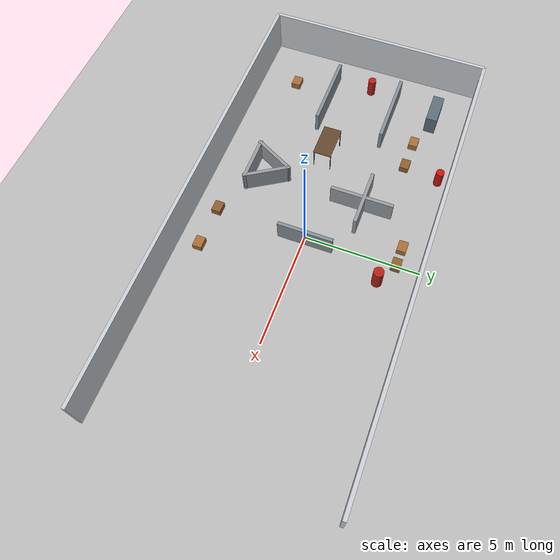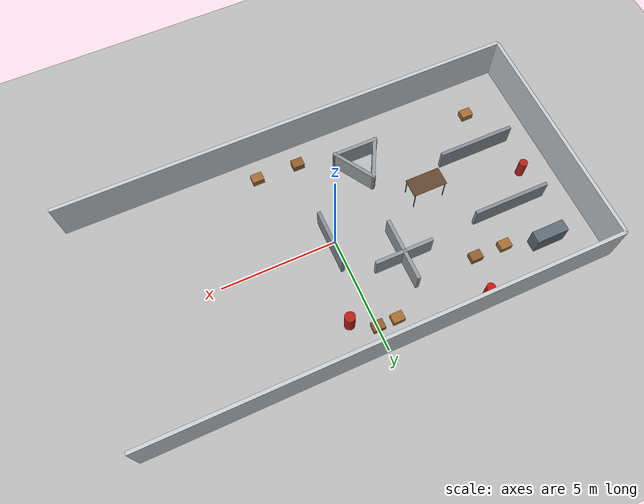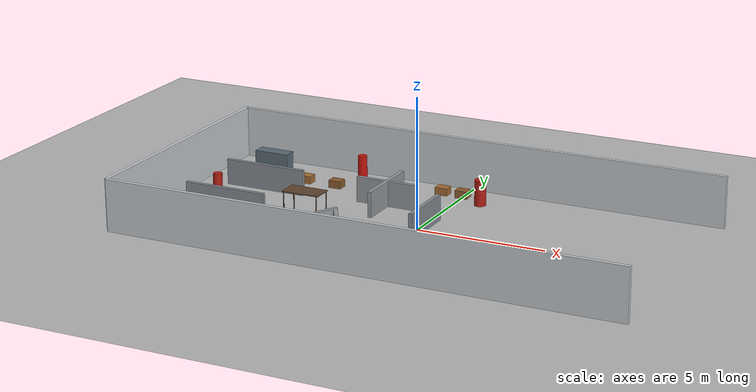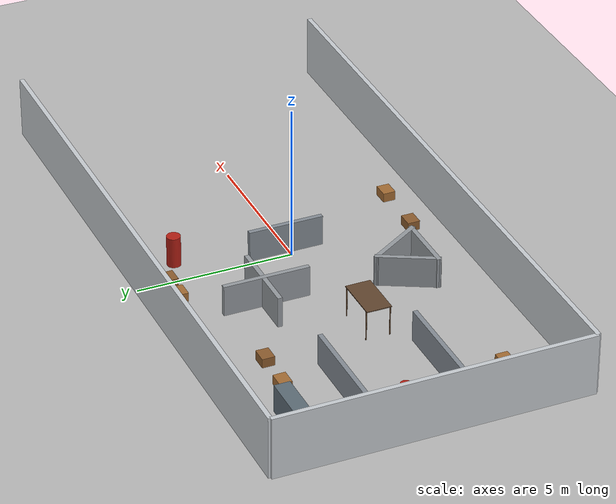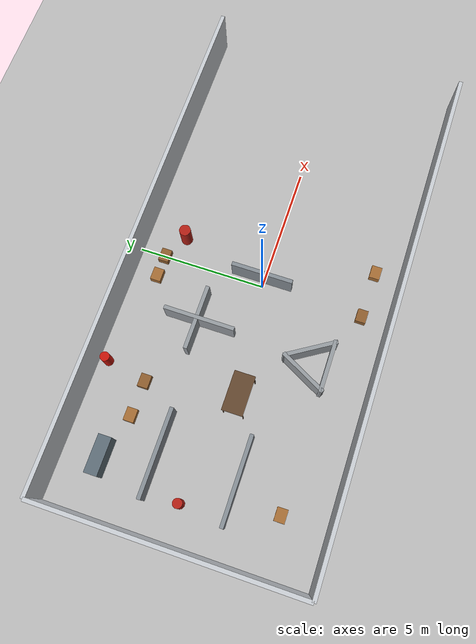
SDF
<sdf version="1.6">
 <world name="default">
  <model name="ground_plane">
   <static>true</static>
   <link name="link">
    <collision name="collision">
     <geometry><plane><normal>0 0 1</normal><size>100 100</size></plane></geometry>
     <surface><friction><ode><mu>100</mu><mu2>50</mu2></ode></friction></surface>
    </collision>
    <visual name="visual">
     <cast_shadows>false</cast_shadows>
     <geometry><plane><normal>0 0 1</normal><size>100 100</size></plane></geometry>
     <material><ambient>0.72 0.72 0.72 1</ambient><diffuse>0.72 0.72 0.72 1</diffuse></material>
    </visual>
   </link>
  </model>
  <model name="boundary_wall_north">
   <static>true</static>
   <pose>0 5 1 0 0 0</pose>
   <link name="link">
    <collision name="collision">
     <geometry><box><size>20 0.15 2</size></box></geometry>
     <surface>
      <friction>
       <ode><mu>1</mu><mu2>1</mu2><fdir1>0 0 0</fdir1><slip1>0</slip1><slip2>0</slip2></ode>
       <torsional>
        <coefficient>1</coefficient>
        <patch_radius>0</patch_radius>
        <surface_radius>0</surface_radius>
        <use_patch_radius>1</use_patch_radius>
        <ode><slip>0</slip></ode>
       </torsional>
      </friction>
      <bounce><restitution_coefficient>0</restitution_coefficient><threshold>1e+06</threshold></bounce>
      <contact>
       <collide_without_contact>0</collide_without_contact>
       <collide_without_contact_bitmask>1</collide_without_contact_bitmask>
       <collide_bitmask>1</collide_bitmask>
       <ode>
        <soft_cfm>0</soft_cfm>
        <soft_erp>0.2</soft_erp>
        <kp>1e+13</kp>
        <kd>1</kd>
        <max_vel>0.01</max_vel>
        <min_depth>0</min_depth>
       </ode>
       <bullet>
        <split_impulse>1</split_impulse>
        <split_impulse_penetration_threshold>-0.01</split_impulse_penetration_threshold>
        <soft_cfm>0</soft_cfm>
        <soft_erp>0.2</soft_erp>
        <kp>1e+13</kp>
        <kd>1</kd>
       </bullet>
      </contact>
     </surface>
    </collision>
    <visual name="visual">
     <geometry><box><size>20 0.15 2</size></box></geometry>
     <material><ambient>0.78 0.8 0.82 1</ambient><diffuse>0.78 0.8 0.82 1</diffuse></material>
    </visual>
   </link>
  </model>
  <model name="boundary_wall_south">
   <static>true</static>
   <pose>0 -5 1 0 0 3.1415927</pose>
   <link name="link">
    <collision name="collision">
     <geometry><box><size>20 0.15 2</size></box></geometry>
     <surface>
      <friction>
       <ode><mu>1</mu><mu2>1</mu2><fdir1>0 0 0</fdir1><slip1>0</slip1><slip2>0</slip2></ode>
       <torsional>
        <coefficient>1</coefficient>
        <patch_radius>0</patch_radius>
        <surface_radius>0</surface_radius>
        <use_patch_radius>1</use_patch_radius>
        <ode><slip>0</slip></ode>
       </torsional>
      </friction>
      <bounce><restitution_coefficient>0</restitution_coefficient><threshold>1e+06</threshold></bounce>
      <contact>
       <collide_without_contact>0</collide_without_contact>
       <collide_without_contact_bitmask>1</collide_without_contact_bitmask>
       <collide_bitmask>1</collide_bitmask>
       <ode>
        <soft_cfm>0</soft_cfm>
        <soft_erp>0.2</soft_erp>
        <kp>1e+13</kp>
        <kd>1</kd>
        <max_vel>0.01</max_vel>
        <min_depth>0</min_depth>
       </ode>
       <bullet>
        <split_impulse>1</split_impulse>
        <split_impulse_penetration_threshold>-0.01</split_impulse_penetration_threshold>
        <soft_cfm>0</soft_cfm>
        <soft_erp>0.2</soft_erp>
        <kp>1e+13</kp>
        <kd>1</kd>
       </bullet>
      </contact>
     </surface>
    </collision>
    <visual name="visual">
     <geometry><box><size>20 0.15 2</size></box></geometry>
     <material><ambient>0.78 0.8 0.82 1</ambient><diffuse>0.78 0.8 0.82 1</diffuse></material>
    </visual>
   </link>
  </model>
  <model name="boundary_wall_west">
   <static>true</static>
   <pose>-10 0 1 0 0 1.5707963</pose>
   <link name="link">
    <collision name="collision">
     <geometry><box><size>10 0.15 2</size></box></geometry>
     <surface>
      <friction>
       <ode><mu>1</mu><mu2>1</mu2><fdir1>0 0 0</fdir1><slip1>0</slip1><slip2>0</slip2></ode>
       <torsional>
        <coefficient>1</coefficient>
        <patch_radius>0</patch_radius>
        <surface_radius>0</surface_radius>
        <use_patch_radius>1</use_patch_radius>
        <ode><slip>0</slip></ode>
       </torsional>
      </friction>
      <bounce><restitution_coefficient>0</restitution_coefficient><threshold>1e+06</threshold></bounce>
      <contact>
       <collide_without_contact>0</collide_without_contact>
       <collide_without_contact_bitmask>1</collide_without_contact_bitmask>
       <collide_bitmask>1</collide_bitmask>
       <ode>
        <soft_cfm>0</soft_cfm>
        <soft_erp>0.2</soft_erp>
        <kp>1e+13</kp>
        <kd>1</kd>
        <max_vel>0.01</max_vel>
        <min_depth>0</min_depth>
       </ode>
       <bullet>
        <split_impulse>1</split_impulse>
        <split_impulse_penetration_threshold>-0.01</split_impulse_penetration_threshold>
        <soft_cfm>0</soft_cfm>
        <soft_erp>0.2</soft_erp>
        <kp>1e+13</kp>
        <kd>1</kd>
       </bullet>
      </contact>
     </surface>
    </collision>
    <visual name="visual">
     <geometry><box><size>10 0.15 2</size></box></geometry>
     <material><ambient>0.78 0.8 0.82 1</ambient><diffuse>0.78 0.8 0.82 1</diffuse></material>
    </visual>
   </link>
  </model>
  <model name="box_Wall_11_Wall_11_Collision">
   <static>true</static>
   <pose>-2.15144 1.85688 0.5 0 0 0</pose>
   <link name="link">
    <collision name="collision">
     <geometry><box><size>2.5 0.15 1</size></box></geometry>
     <surface>
      <friction>
       <ode><mu>1</mu><mu2>1</mu2><fdir1>0 0 0</fdir1><slip1>0</slip1><slip2>0</slip2></ode>
       <torsional>
        <coefficient>1</coefficient>
        <patch_radius>0</patch_radius>
        <surface_radius>0</surface_radius>
        <use_patch_radius>1</use_patch_radius>
        <ode><slip>0</slip></ode>
       </torsional>
      </friction>
      <bounce><restitution_coefficient>0</restitution_coefficient><threshold>1e+06</threshold></bounce>
      <contact>
       <collide_without_contact>0</collide_without_contact>
       <collide_without_contact_bitmask>1</collide_without_contact_bitmask>
       <collide_bitmask>1</collide_bitmask>
       <ode>
        <soft_cfm>0</soft_cfm>
        <soft_erp>0.2</soft_erp>
        <kp>1e+13</kp>
        <kd>1</kd>
        <max_vel>0.01</max_vel>
        <min_depth>0</min_depth>
       </ode>
       <bullet>
        <split_impulse>1</split_impulse>
        <split_impulse_penetration_threshold>-0.01</split_impulse_penetration_threshold>
        <soft_cfm>0</soft_cfm>
        <soft_erp>0.2</soft_erp>
        <kp>1e+13</kp>
        <kd>1</kd>
       </bullet>
      </contact>
     </surface>
    </collision>
    <visual name="visual">
     <geometry><box><size>2.5 0.15 1</size></box></geometry>
     <material><ambient>0.58 0.6 0.62 1</ambient><diffuse>0.58 0.6 0.62 1</diffuse></material>
    </visual>
   </link>
  </model>
  <model name="box_Wall_13_Wall_13_Collision">
   <static>true</static>
   <pose>-2.15444 1.76388 0.5 0 0 -1.5708</pose>
   <link name="link">
    <collision name="collision">
     <geometry><box><size>2.75 0.15 1</size></box></geometry>
     <surface>
      <friction>
       <ode><mu>1</mu><mu2>1</mu2><fdir1>0 0 0</fdir1><slip1>0</slip1><slip2>0</slip2></ode>
       <torsional>
        <coefficient>1</coefficient>
        <patch_radius>0</patch_radius>
        <surface_radius>0</surface_radius>
        <use_patch_radius>1</use_patch_radius>
        <ode><slip>0</slip></ode>
       </torsional>
      </friction>
      <bounce><restitution_coefficient>0</restitution_coefficient><threshold>1e+06</threshold></bounce>
      <contact>
       <collide_without_contact>0</collide_without_contact>
       <collide_without_contact_bitmask>1</collide_without_contact_bitmask>
       <collide_bitmask>1</collide_bitmask>
       <ode>
        <soft_cfm>0</soft_cfm>
        <soft_erp>0.2</soft_erp>
        <kp>1e+13</kp>
        <kd>1</kd>
        <max_vel>0.01</max_vel>
        <min_depth>0</min_depth>
       </ode>
       <bullet>
        <split_impulse>1</split_impulse>
        <split_impulse_penetration_threshold>-0.01</split_impulse_penetration_threshold>
        <soft_cfm>0</soft_cfm>
        <soft_erp>0.2</soft_erp>
        <kp>1e+13</kp>
        <kd>1</kd>
       </bullet>
      </contact>
     </surface>
    </collision>
    <visual name="visual">
     <geometry><box><size>2.75 0.15 1</size></box></geometry>
     <material><ambient>0.58 0.6 0.62 1</ambient><diffuse>0.58 0.6 0.62 1</diffuse></material>
    </visual>
   </link>
  </model>
  <model name="box_Wall_24_Wall_24_Collision">
   <static>true</static>
   <pose>-2.8952 -2.491 0.5 0 0 1.09459</pose>
   <link name="link">
    <collision name="collision">
     <geometry><box><size>1.97704 0.15 1</size></box></geometry>
     <surface>
      <friction>
       <ode><mu>1</mu><mu2>1</mu2><fdir1>0 0 0</fdir1><slip1>0</slip1><slip2>0</slip2></ode>
       <torsional>
        <coefficient>1</coefficient>
        <patch_radius>0</patch_radius>
        <surface_radius>0</surface_radius>
        <use_patch_radius>1</use_patch_radius>
        <ode><slip>0</slip></ode>
       </torsional>
      </friction>
      <bounce><restitution_coefficient>0</restitution_coefficient><threshold>1e+06</threshold></bounce>
      <contact>
       <collide_without_contact>0</collide_without_contact>
       <collide_without_contact_bitmask>1</collide_without_contact_bitmask>
       <collide_bitmask>1</collide_bitmask>
       <ode>
        <soft_cfm>0</soft_cfm>
        <soft_erp>0.2</soft_erp>
        <kp>1e+13</kp>
        <kd>1</kd>
        <max_vel>0.01</max_vel>
        <min_depth>0</min_depth>
       </ode>
       <bullet>
        <split_impulse>1</split_impulse>
        <split_impulse_penetration_threshold>-0.01</split_impulse_penetration_threshold>
        <soft_cfm>0</soft_cfm>
        <soft_erp>0.2</soft_erp>
        <kp>1e+13</kp>
        <kd>1</kd>
       </bullet>
      </contact>
     </surface>
    </collision>
    <visual name="visual">
     <geometry><box><size>1.97704 0.15 1</size></box></geometry>
     <material><ambient>0.58 0.6 0.62 1</ambient><diffuse>0.58 0.6 0.62 1</diffuse></material>
    </visual>
   </link>
  </model>
  <model name="box_Wall_25_Wall_25_Collision">
   <static>true</static>
   <pose>-1.97021 -2.491 0.5 0 0 -1.01325</pose>
   <link name="link">
    <collision name="collision">
     <geometry><box><size>2.06356 0.15 1</size></box></geometry>
     <surface>
      <friction>
       <ode><mu>1</mu><mu2>1</mu2><fdir1>0 0 0</fdir1><slip1>0</slip1><slip2>0</slip2></ode>
       <torsional>
        <coefficient>1</coefficient>
        <patch_radius>0</patch_radius>
        <surface_radius>0</surface_radius>
        <use_patch_radius>1</use_patch_radius>
        <ode><slip>0</slip></ode>
       </torsional>
      </friction>
      <bounce><restitution_coefficient>0</restitution_coefficient><threshold>1e+06</threshold></bounce>
      <contact>
       <collide_without_contact>0</collide_without_contact>
       <collide_without_contact_bitmask>1</collide_without_contact_bitmask>
       <collide_bitmask>1</collide_bitmask>
       <ode>
        <soft_cfm>0</soft_cfm>
        <soft_erp>0.2</soft_erp>
        <kp>1e+13</kp>
        <kd>1</kd>
        <max_vel>0.01</max_vel>
        <min_depth>0</min_depth>
       </ode>
       <bullet>
        <split_impulse>1</split_impulse>
        <split_impulse_penetration_threshold>-0.01</split_impulse_penetration_threshold>
        <soft_cfm>0</soft_cfm>
        <soft_erp>0.2</soft_erp>
        <kp>1e+13</kp>
        <kd>1</kd>
       </bullet>
      </contact>
     </surface>
    </collision>
    <visual name="visual">
     <geometry><box><size>2.06356 0.15 1</size></box></geometry>
     <material><ambient>0.58 0.6 0.62 1</ambient><diffuse>0.58 0.6 0.62 1</diffuse></material>
    </visual>
   </link>
  </model>
  <model name="box_Wall_26_Wall_26_Collision">
   <static>true</static>
   <pose>-2.38897 -3.28539 0.5 0 0 3.14159</pose>
   <link name="link">
    <collision name="collision">
     <geometry><box><size>2 0.15 1</size></box></geometry>
     <surface>
      <friction>
       <ode><mu>1</mu><mu2>1</mu2><fdir1>0 0 0</fdir1><slip1>0</slip1><slip2>0</slip2></ode>
       <torsional>
        <coefficient>1</coefficient>
        <patch_radius>0</patch_radius>
        <surface_radius>0</surface_radius>
        <use_patch_radius>1</use_patch_radius>
        <ode><slip>0</slip></ode>
       </torsional>
      </friction>
      <bounce><restitution_coefficient>0</restitution_coefficient><threshold>1e+06</threshold></bounce>
      <contact>
       <collide_without_contact>0</collide_without_contact>
       <collide_without_contact_bitmask>1</collide_without_contact_bitmask>
       <collide_bitmask>1</collide_bitmask>
       <ode>
        <soft_cfm>0</soft_cfm>
        <soft_erp>0.2</soft_erp>
        <kp>1e+13</kp>
        <kd>1</kd>
        <max_vel>0.01</max_vel>
        <min_depth>0</min_depth>
       </ode>
       <bullet>
        <split_impulse>1</split_impulse>
        <split_impulse_penetration_threshold>-0.01</split_impulse_penetration_threshold>
        <soft_cfm>0</soft_cfm>
        <soft_erp>0.2</soft_erp>
        <kp>1e+13</kp>
        <kd>1</kd>
       </bullet>
      </contact>
     </surface>
    </collision>
    <visual name="visual">
     <geometry><box><size>2 0.15 1</size></box></geometry>
     <material><ambient>0.58 0.6 0.62 1</ambient><diffuse>0.58 0.6 0.62 1</diffuse></material>
    </visual>
   </link>
  </model>
  <model name="cardboard_box_1">
   <static>true</static>
   <pose>0.006438 -3.96264 0.15 0 0 0</pose>
   <link name="link">
    <collision name="collision">
     <geometry><box><size>0.5 0.4 0.3</size></box></geometry>
     <surface>
      <friction><ode><mu>1</mu><mu2>1</mu2></ode></friction>
      <contact><ode><kp>1e+07</kp><kd>1</kd><min_depth>0.001</min_depth><max_vel>0.1</max_vel></ode></contact>
     </surface>
    </collision>
    <visual name="visual">
     <geometry><box><size>0.5 0.4 0.3</size></box></geometry>
     <material><ambient>0.55 0.36 0.18 1</ambient><diffuse>0.55 0.36 0.18 1</diffuse></material>
    </visual>
   </link>
  </model>
  <model name="cardboard_box_2">
   <static>true</static>
   <pose>-4.88373 2.96722 0.15 0 0 0</pose>
   <link name="link">
    <collision name="collision">
     <geometry><box><size>0.5 0.4 0.3</size></box></geometry>
     <surface>
      <friction><ode><mu>1</mu><mu2>1</mu2></ode></friction>
      <contact><ode><kp>1e+07</kp><kd>1</kd><min_depth>0.001</min_depth><max_vel>0.1</max_vel></ode></contact>
     </surface>
    </collision>
    <visual name="visual">
     <geometry><box><size>0.5 0.4 0.3</size></box></geometry>
     <material><ambient>0.55 0.36 0.18 1</ambient><diffuse>0.55 0.36 0.18 1</diffuse></material>
    </visual>
   </link>
  </model>
  <model name="cardboard_box_3">
   <static>true</static>
   <pose>-0.0158 3.98725 0.15 0 0 0</pose>
   <link name="link">
    <collision name="collision">
     <geometry><box><size>0.5 0.4 0.3</size></box></geometry>
     <surface>
      <friction><ode><mu>1</mu><mu2>1</mu2></ode></friction>
      <contact><ode><kp>1e+07</kp><kd>1</kd><min_depth>0.001</min_depth><max_vel>0.1</max_vel></ode></contact>
     </surface>
    </collision>
    <visual name="visual">
     <geometry><box><size>0.5 0.4 0.3</size></box></geometry>
     <material><ambient>0.55 0.36 0.18 1</ambient><diffuse>0.55 0.36 0.18 1</diffuse></material>
    </visual>
   </link>
  </model>
  <model name="table_link_surface">
   <static>true</static>
   <pose>-4.34248 -0.532954 1 0 0 0</pose>
   <link name="link">
    <collision name="collision">
     <geometry><box><size>1.5 0.8 0.03</size></box></geometry>
     <surface><friction><ode><mu>0.6</mu><mu2>0.6</mu2></ode></friction></surface>
    </collision>
    <visual name="visual">
     <geometry><box><size>1.5 0.8 0.03</size></box></geometry>
     <material><ambient>0.38 0.27 0.18 1</ambient><diffuse>0.38 0.27 0.18 1</diffuse></material>
    </visual>
   </link>
  </model>
  <model name="test_wall_left_corridor_upper">
   <static>true</static>
   <pose>-7.2 1.55 0.5 0 0 0</pose>
   <link name="link">
    <collision name="collision">
     <geometry><box><size>3.3 0.15 1</size></box></geometry>
     <surface>
      <friction>
       <ode><mu>1</mu><mu2>1</mu2><fdir1>0 0 0</fdir1><slip1>0</slip1><slip2>0</slip2></ode>
       <torsional>
        <coefficient>1</coefficient>
        <patch_radius>0</patch_radius>
        <surface_radius>0</surface_radius>
        <use_patch_radius>1</use_patch_radius>
        <ode><slip>0</slip></ode>
       </torsional>
      </friction>
      <bounce><restitution_coefficient>0</restitution_coefficient><threshold>1e+06</threshold></bounce>
      <contact>
       <collide_without_contact>0</collide_without_contact>
       <collide_without_contact_bitmask>1</collide_without_contact_bitmask>
       <collide_bitmask>1</collide_bitmask>
       <ode>
        <soft_cfm>0</soft_cfm>
        <soft_erp>0.2</soft_erp>
        <kp>1e+13</kp>
        <kd>1</kd>
        <max_vel>0.01</max_vel>
        <min_depth>0</min_depth>
       </ode>
       <bullet>
        <split_impulse>1</split_impulse>
        <split_impulse_penetration_threshold>-0.01</split_impulse_penetration_threshold>
        <soft_cfm>0</soft_cfm>
        <soft_erp>0.2</soft_erp>
        <kp>1e+13</kp>
        <kd>1</kd>
       </bullet>
      </contact>
     </surface>
    </collision>
    <visual name="visual">
     <geometry><box><size>3.3 0.15 1</size></box></geometry>
     <material><ambient>0.52 0.55 0.58 1</ambient><diffuse>0.52 0.55 0.58 1</diffuse></material>
    </visual>
   </link>
  </model>
  <model name="test_wall_left_corridor_lower">
   <static>true</static>
   <pose>-7.2 -1.45 0.5 0 0 0</pose>
   <link name="link">
    <collision name="collision">
     <geometry><box><size>3.3 0.15 1</size></box></geometry>
     <surface>
      <friction>
       <ode><mu>1</mu><mu2>1</mu2><fdir1>0 0 0</fdir1><slip1>0</slip1><slip2>0</slip2></ode>
       <torsional>
        <coefficient>1</coefficient>
        <patch_radius>0</patch_radius>
        <surface_radius>0</surface_radius>
        <use_patch_radius>1</use_patch_radius>
        <ode><slip>0</slip></ode>
       </torsional>
      </friction>
      <bounce><restitution_coefficient>0</restitution_coefficient><threshold>1e+06</threshold></bounce>
      <contact>
       <collide_without_contact>0</collide_without_contact>
       <collide_without_contact_bitmask>1</collide_without_contact_bitmask>
       <collide_bitmask>1</collide_bitmask>
       <ode>
        <soft_cfm>0</soft_cfm>
        <soft_erp>0.2</soft_erp>
        <kp>1e+13</kp>
        <kd>1</kd>
        <max_vel>0.01</max_vel>
        <min_depth>0</min_depth>
       </ode>
       <bullet>
        <split_impulse>1</split_impulse>
        <split_impulse_penetration_threshold>-0.01</split_impulse_penetration_threshold>
        <soft_cfm>0</soft_cfm>
        <soft_erp>0.2</soft_erp>
        <kp>1e+13</kp>
        <kd>1</kd>
       </bullet>
      </contact>
     </surface>
    </collision>
    <visual name="visual">
     <geometry><box><size>3.3 0.15 1</size></box></geometry>
     <material><ambient>0.52 0.55 0.58 1</ambient><diffuse>0.52 0.55 0.58 1</diffuse></material>
    </visual>
   </link>
  </model>
  <model name="test_wall_middle_vertical">
   <static>true</static>
   <pose>0.25 0.1 0.5 0 0 1.5707963</pose>
   <link name="link">
    <collision name="collision">
     <geometry><box><size>2.4 0.15 1</size></box></geometry>
     <surface>
      <friction>
       <ode><mu>1</mu><mu2>1</mu2><fdir1>0 0 0</fdir1><slip1>0</slip1><slip2>0</slip2></ode>
       <torsional>
        <coefficient>1</coefficient>
        <patch_radius>0</patch_radius>
        <surface_radius>0</surface_radius>
        <use_patch_radius>1</use_patch_radius>
        <ode><slip>0</slip></ode>
       </torsional>
      </friction>
      <bounce><restitution_coefficient>0</restitution_coefficient><threshold>1e+06</threshold></bounce>
      <contact>
       <collide_without_contact>0</collide_without_contact>
       <collide_without_contact_bitmask>1</collide_without_contact_bitmask>
       <collide_bitmask>1</collide_bitmask>
       <ode>
        <soft_cfm>0</soft_cfm>
        <soft_erp>0.2</soft_erp>
        <kp>1e+13</kp>
        <kd>1</kd>
        <max_vel>0.01</max_vel>
        <min_depth>0</min_depth>
       </ode>
       <bullet>
        <split_impulse>1</split_impulse>
        <split_impulse_penetration_threshold>-0.01</split_impulse_penetration_threshold>
        <soft_cfm>0</soft_cfm>
        <soft_erp>0.2</soft_erp>
        <kp>1e+13</kp>
        <kd>1</kd>
       </bullet>
      </contact>
     </surface>
    </collision>
    <visual name="visual">
     <geometry><box><size>2.4 0.15 1</size></box></geometry>
     <material><ambient>0.52 0.55 0.58 1</ambient><diffuse>0.52 0.55 0.58 1</diffuse></material>
    </visual>
   </link>
  </model>
  <model name="test_low_cabinet_left">
   <static>true</static>
   <pose>-7.9 3.45 0.45 0 0 0</pose>
   <link name="link">
    <collision name="collision">
     <geometry><box><size>1.4 0.5 0.9</size></box></geometry>
     <surface>
      <friction>
       <ode><mu>1</mu><mu2>1</mu2><fdir1>0 0 0</fdir1><slip1>0</slip1><slip2>0</slip2></ode>
       <torsional>
        <coefficient>1</coefficient>
        <patch_radius>0</patch_radius>
        <surface_radius>0</surface_radius>
        <use_patch_radius>1</use_patch_radius>
        <ode><slip>0</slip></ode>
       </torsional>
      </friction>
      <bounce><restitution_coefficient>0</restitution_coefficient><threshold>1e+06</threshold></bounce>
      <contact>
       <collide_without_contact>0</collide_without_contact>
       <collide_without_contact_bitmask>1</collide_without_contact_bitmask>
       <collide_bitmask>1</collide_bitmask>
       <ode>
        <soft_cfm>0</soft_cfm>
        <soft_erp>0.2</soft_erp>
        <kp>1e+13</kp>
        <kd>1</kd>
        <max_vel>0.01</max_vel>
        <min_depth>0</min_depth>
       </ode>
       <bullet>
        <split_impulse>1</split_impulse>
        <split_impulse_penetration_threshold>-0.01</split_impulse_penetration_threshold>
        <soft_cfm>0</soft_cfm>
        <soft_erp>0.2</soft_erp>
        <kp>1e+13</kp>
        <kd>1</kd>
       </bullet>
      </contact>
     </surface>
    </collision>
    <visual name="visual">
     <geometry><box><size>1.4 0.5 0.9</size></box></geometry>
     <material><ambient>0.36 0.42 0.46 1</ambient><diffuse>0.36 0.42 0.46 1</diffuse></material>
    </visual>
   </link>
  </model>
  <model name="test_cardboard_box_4">
   <static>true</static>
   <pose>-7.8 -3.25 0.15 0 0 0</pose>
   <link name="link">
    <collision name="collision">
     <geometry><box><size>0.5 0.4 0.3</size></box></geometry>
     <surface>
      <friction><ode><mu>1</mu><mu2>1</mu2></ode></friction>
      <contact><ode><kp>1e+07</kp><kd>1</kd><min_depth>0.001</min_depth><max_vel>0.1</max_vel></ode></contact>
     </surface>
    </collision>
    <visual name="visual">
     <geometry><box><size>0.5 0.4 0.3</size></box></geometry>
     <material><ambient>0.64 0.42 0.2 1</ambient><diffuse>0.64 0.42 0.2 1</diffuse></material>
    </visual>
   </link>
  </model>
  <model name="test_cardboard_box_5">
   <static>true</static>
   <pose>-6.2 3 0.15 0 0 0</pose>
   <link name="link">
    <collision name="collision">
     <geometry><box><size>0.5 0.4 0.3</size></box></geometry>
     <surface>
      <friction><ode><mu>1</mu><mu2>1</mu2></ode></friction>
      <contact><ode><kp>1e+07</kp><kd>1</kd><min_depth>0.001</min_depth><max_vel>0.1</max_vel></ode></contact>
     </surface>
    </collision>
    <visual name="visual">
     <geometry><box><size>0.5 0.4 0.3</size></box></geometry>
     <material><ambient>0.64 0.42 0.2 1</ambient><diffuse>0.64 0.42 0.2 1</diffuse></material>
    </visual>
   </link>
  </model>
  <model name="test_cardboard_box_8">
   <static>true</static>
   <pose>1.85 -4 0.15 0 0 0</pose>
   <link name="link">
    <collision name="collision">
     <geometry><box><size>0.5 0.4 0.3</size></box></geometry>
     <surface>
      <friction><ode><mu>1</mu><mu2>1</mu2></ode></friction>
      <contact><ode><kp>1e+07</kp><kd>1</kd><min_depth>0.001</min_depth><max_vel>0.1</max_vel></ode></contact>
     </surface>
    </collision>
    <visual name="visual">
     <geometry><box><size>0.5 0.4 0.3</size></box></geometry>
     <material><ambient>0.64 0.42 0.2 1</ambient><diffuse>0.64 0.42 0.2 1</diffuse></material>
    </visual>
   </link>
  </model>
  <model name="test_cardboard_box_9">
   <static>true</static>
   <pose>-0.85 4 0.15 0 0 0</pose>
   <link name="link">
    <collision name="collision">
     <geometry><box><size>0.5 0.4 0.3</size></box></geometry>
     <surface>
      <friction><ode><mu>1</mu><mu2>1</mu2></ode></friction>
      <contact><ode><kp>1e+07</kp><kd>1</kd><min_depth>0.001</min_depth><max_vel>0.1</max_vel></ode></contact>
     </surface>
    </collision>
    <visual name="visual">
     <geometry><box><size>0.5 0.4 0.3</size></box></geometry>
     <material><ambient>0.64 0.42 0.2 1</ambient><diffuse>0.64 0.42 0.2 1</diffuse></material>
    </visual>
   </link>
  </model>
  <model name="fire_hydrant_approx_collision">
   <static>true</static>
   <pose>-4.57173 4.55086 0.425 0 0 0</pose>
   <link name="link">
    <collision name="collision">
     <geometry><cylinder><radius>0.18</radius><length>0.85</length></cylinder></geometry>
     <surface>
      <friction>
       <ode><mu>1</mu><mu2>1</mu2><fdir1>0 0 0</fdir1><slip1>0</slip1><slip2>0</slip2></ode>
       <torsional>
        <coefficient>1</coefficient>
        <patch_radius>0</patch_radius>
        <surface_radius>0</surface_radius>
        <use_patch_radius>1</use_patch_radius>
        <ode><slip>0</slip></ode>
       </torsional>
      </friction>
      <bounce><restitution_coefficient>0</restitution_coefficient><threshold>1e+06</threshold></bounce>
      <contact>
       <collide_without_contact>0</collide_without_contact>
       <collide_without_contact_bitmask>1</collide_without_contact_bitmask>
       <collide_bitmask>1</collide_bitmask>
       <ode>
        <soft_cfm>0</soft_cfm>
        <soft_erp>0.2</soft_erp>
        <kp>1e+13</kp>
        <kd>1</kd>
        <max_vel>0.01</max_vel>
        <min_depth>0</min_depth>
       </ode>
       <bullet>
        <split_impulse>1</split_impulse>
        <split_impulse_penetration_threshold>-0.01</split_impulse_penetration_threshold>
        <soft_cfm>0</soft_cfm>
        <soft_erp>0.2</soft_erp>
        <kp>1e+13</kp>
        <kd>1</kd>
       </bullet>
      </contact>
     </surface>
    </collision>
    <visual name="visual">
     <geometry><cylinder><radius>0.18</radius><length>0.85</length></cylinder></geometry>
     <material><ambient>0.78 0.08 0.04 1</ambient><diffuse>0.78 0.08 0.04 1</diffuse></material>
    </visual>
   </link>
  </model>
  <model name="table_link_back_left_leg">
   <static>true</static>
   <pose>-5.02248 -0.152954 0.5 0 0 0</pose>
   <link name="link">
    <collision name="collision">
     <geometry><cylinder><radius>0.02</radius><length>1</length></cylinder></geometry>
     <surface><friction><ode><mu>0.6</mu><mu2>0.6</mu2></ode></friction></surface>
    </collision>
    <visual name="visual">
     <geometry><cylinder><radius>0.02</radius><length>1</length></cylinder></geometry>
     <material><ambient>0.38 0.27 0.18 1</ambient><diffuse>0.38 0.27 0.18 1</diffuse></material>
    </visual>
   </link>
  </model>
  <model name="table_link_back_right_leg">
   <static>true</static>
   <pose>-5.02248 -0.912954 0.5 0 0 0</pose>
   <link name="link">
    <collision name="collision">
     <geometry><cylinder><radius>0.02</radius><length>1</length></cylinder></geometry>
     <surface><friction><ode><mu>0.6</mu><mu2>0.6</mu2></ode></friction></surface>
    </collision>
    <visual name="visual">
     <geometry><cylinder><radius>0.02</radius><length>1</length></cylinder></geometry>
     <material><ambient>0.38 0.27 0.18 1</ambient><diffuse>0.38 0.27 0.18 1</diffuse></material>
    </visual>
   </link>
  </model>
  <model name="table_link_front_left_leg">
   <static>true</static>
   <pose>-3.66248 -0.152954 0.5 0 0 0</pose>
   <link name="link">
    <collision name="collision">
     <geometry><cylinder><radius>0.02</radius><length>1</length></cylinder></geometry>
     <surface><friction><ode><mu>0.6</mu><mu2>0.6</mu2></ode></friction></surface>
    </collision>
    <visual name="visual">
     <geometry><cylinder><radius>0.02</radius><length>1</length></cylinder></geometry>
     <material><ambient>0.38 0.27 0.18 1</ambient><diffuse>0.38 0.27 0.18 1</diffuse></material>
    </visual>
   </link>
  </model>
  <model name="table_link_front_right_leg">
   <static>true</static>
   <pose>-3.66248 -0.912954 0.5 0 0 0</pose>
   <link name="link">
    <collision name="collision">
     <geometry><cylinder><radius>0.02</radius><length>1</length></cylinder></geometry>
     <surface><friction><ode><mu>0.6</mu><mu2>0.6</mu2></ode></friction></surface>
    </collision>
    <visual name="visual">
     <geometry><cylinder><radius>0.02</radius><length>1</length></cylinder></geometry>
     <material><ambient>0.38 0.27 0.18 1</ambient><diffuse>0.38 0.27 0.18 1</diffuse></material>
    </visual>
   </link>
  </model>
  <model name="test_fire_hydrant_left">
   <static>true</static>
   <pose>-8.55 0.25 0.425 0 0 0</pose>
   <link name="link">
    <collision name="collision">
     <geometry><cylinder><radius>0.18</radius><length>0.85</length></cylinder></geometry>
     <surface>
      <friction>
       <ode><mu>1</mu><mu2>1</mu2><fdir1>0 0 0</fdir1><slip1>0</slip1><slip2>0</slip2></ode>
       <torsional>
        <coefficient>1</coefficient>
        <patch_radius>0</patch_radius>
        <surface_radius>0</surface_radius>
        <use_patch_radius>1</use_patch_radius>
        <ode><slip>0</slip></ode>
       </torsional>
      </friction>
      <bounce><restitution_coefficient>0</restitution_coefficient><threshold>1e+06</threshold></bounce>
      <contact>
       <collide_without_contact>0</collide_without_contact>
       <collide_without_contact_bitmask>1</collide_without_contact_bitmask>
       <collide_bitmask>1</collide_bitmask>
       <ode>
        <soft_cfm>0</soft_cfm>
        <soft_erp>0.2</soft_erp>
        <kp>1e+13</kp>
        <kd>1</kd>
        <max_vel>0.01</max_vel>
        <min_depth>0</min_depth>
       </ode>
       <bullet>
        <split_impulse>1</split_impulse>
        <split_impulse_penetration_threshold>-0.01</split_impulse_penetration_threshold>
        <soft_cfm>0</soft_cfm>
        <soft_erp>0.2</soft_erp>
        <kp>1e+13</kp>
        <kd>1</kd>
       </bullet>
      </contact>
     </surface>
    </collision>
    <visual name="visual">
     <geometry><cylinder><radius>0.18</radius><length>0.85</length></cylinder></geometry>
     <material><ambient>0.7 0.12 0.08 1</ambient><diffuse>0.7 0.12 0.08 1</diffuse></material>
    </visual>
   </link>
  </model>
  <model name="test_short_column_center">
   <static>true</static>
   <pose>0.95 3.45 0.5 0 0 0</pose>
   <link name="link">
    <collision name="collision">
     <geometry><cylinder><radius>0.22</radius><length>1</length></cylinder></geometry>
     <surface>
      <friction>
       <ode><mu>1</mu><mu2>1</mu2><fdir1>0 0 0</fdir1><slip1>0</slip1><slip2>0</slip2></ode>
       <torsional>
        <coefficient>1</coefficient>
        <patch_radius>0</patch_radius>
        <surface_radius>0</surface_radius>
        <use_patch_radius>1</use_patch_radius>
        <ode><slip>0</slip></ode>
       </torsional>
      </friction>
      <bounce><restitution_coefficient>0</restitution_coefficient><threshold>1e+06</threshold></bounce>
      <contact>
       <collide_without_contact>0</collide_without_contact>
       <collide_without_contact_bitmask>1</collide_without_contact_bitmask>
       <collide_bitmask>1</collide_bitmask>
       <ode>
        <soft_cfm>0</soft_cfm>
        <soft_erp>0.2</soft_erp>
        <kp>1e+13</kp>
        <kd>1</kd>
        <max_vel>0.01</max_vel>
        <min_depth>0</min_depth>
       </ode>
       <bullet>
        <split_impulse>1</split_impulse>
        <split_impulse_penetration_threshold>-0.01</split_impulse_penetration_threshold>
        <soft_cfm>0</soft_cfm>
        <soft_erp>0.2</soft_erp>
        <kp>1e+13</kp>
        <kd>1</kd>
       </bullet>
      </contact>
     </surface>
    </collision>
    <visual name="visual">
     <geometry><cylinder><radius>0.22</radius><length>1</length></cylinder></geometry>
     <material><ambient>0.7 0.12 0.08 1</ambient><diffuse>0.7 0.12 0.08 1</diffuse></material>
    </visual>
   </link>
  </model>
 </world>
</sdf>
